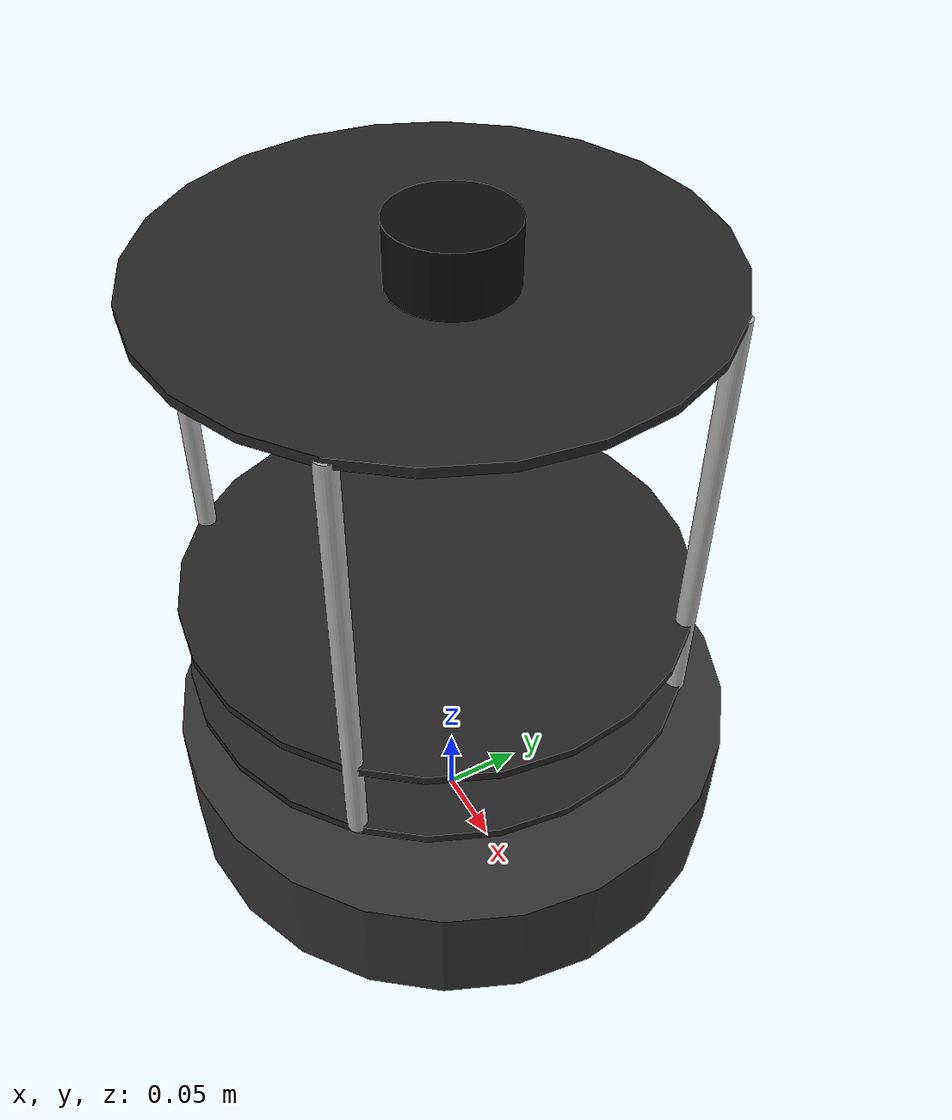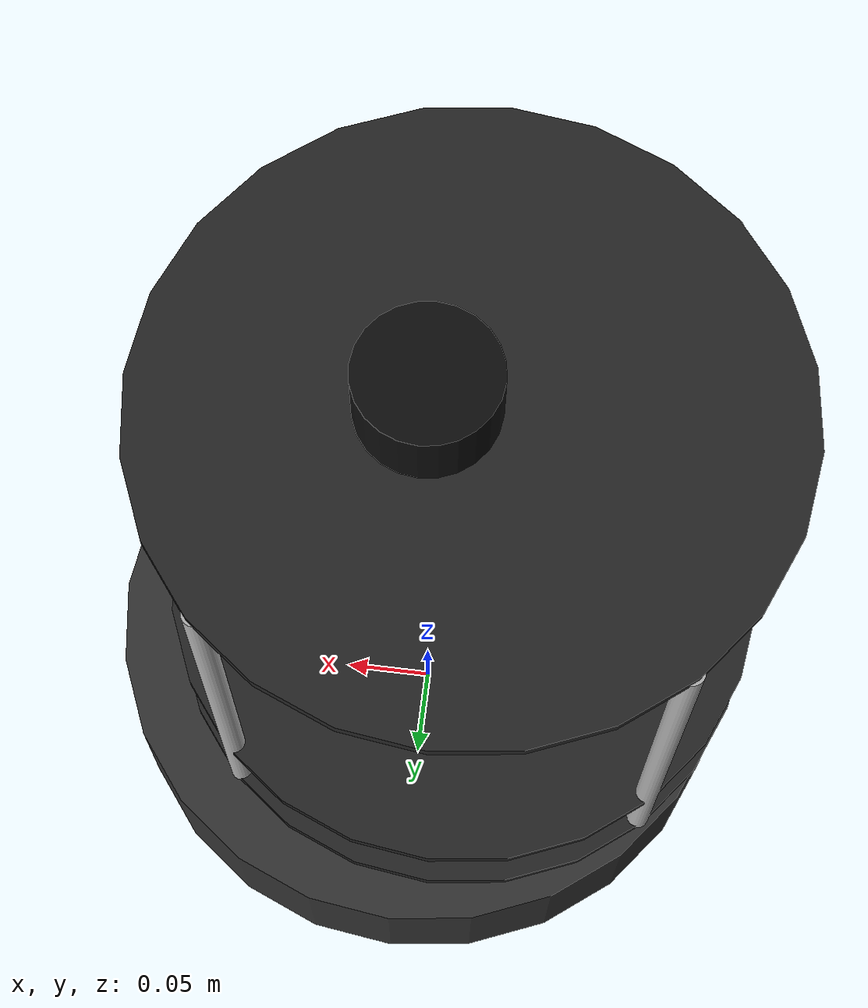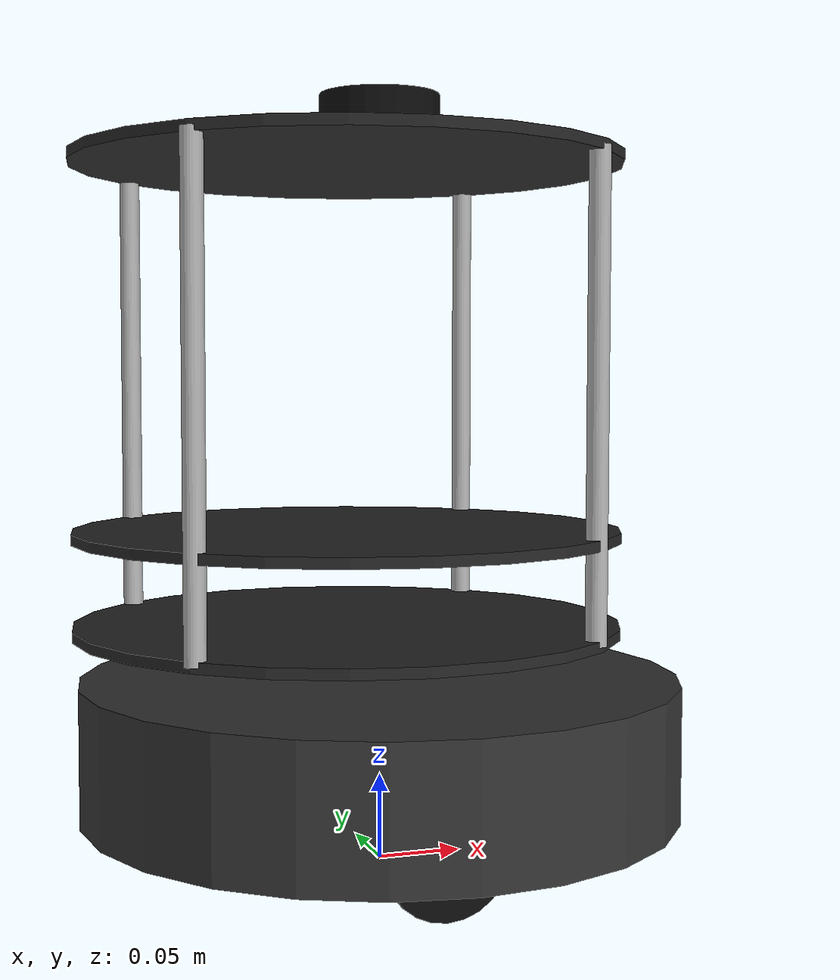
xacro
<?xml version="1.0"?>
<robot name="turtlebot2" xmlns:xacro="http://ros.org/wiki/xacro">

  <!-- sensor: lidar (360º encima del robot) o camera (como el robot real: /scan de
       la cámara de profundidad con depthimage_to_laserscan, 63º y mínimo 0.45 m) -->
  <xacro:arg name="sensor" default="lidar" />
  <!-- odom: world (odometría perfecta) o encoder (integra las ruedas: deriva como la real) -->
  <xacro:arg name="odom" default="world" />

  <xacro:property name="base_radius" value="0.177" />
  <xacro:property name="wheel_radius" value="0.035" />
  <xacro:property name="wheel_separation" value="0.230" />
  <xacro:property name="lidar_height" value="0.43" />

  <xacro:macro name="cylinder_inertia" params="m r h">
    <inertia ixx="${m * (3 * r * r + h * h) / 12}" ixy="0" ixz="0"
             iyy="${m * (3 * r * r + h * h) / 12}" iyz="0"
             izz="${m * r * r / 2}" />
  </xacro:macro>

  <!-- Base -->
  <link name="base_footprint" />

  <joint name="base_joint" type="fixed">
    <parent link="base_footprint" />
    <child link="base_link" />
    <origin xyz="0 0 0.0102" />
  </joint>

  <link name="base_link">
    <visual>
      <origin xyz="0 0 0.0595" />
      <geometry><cylinder radius="${base_radius}" length="0.0794" /></geometry>
      <material name="dark"><color rgba="0.2 0.2 0.2 1" /></material>
    </visual>
    <collision>
      <origin xyz="0 0 0.0595" />
      <geometry><cylinder radius="${base_radius}" length="0.0794" /></geometry>
    </collision>
    <!-- Bandejas: de 0.13 a 0.41 m (por debajo del plano del lidar) -->
    <collision>
      <origin xyz="-0.02 0 0.26" />
      <geometry><cylinder radius="0.16" length="0.28" /></geometry>
    </collision>
    <inertial>
      <origin xyz="0.01 0 0.0595" />
      <mass value="2.4" />
      <xacro:cylinder_inertia m="2.4" r="${base_radius}" h="0.0794" />
    </inertial>
  </link>

  <!-- Ruedas -->
  <xacro:macro name="wheel" params="side y">
    <joint name="wheel_${side}_joint" type="continuous">
      <parent link="base_link" />
      <child link="wheel_${side}_link" />
      <origin xyz="0 ${y} 0.025" rpy="${-pi / 2} 0 0" />
      <axis xyz="0 0 1" />
    </joint>
    <link name="wheel_${side}_link">
      <visual>
        <geometry><cylinder radius="${wheel_radius}" length="0.0206" /></geometry>
        <material name="black"><color rgba="0.05 0.05 0.05 1" /></material>
      </visual>
      <collision>
        <geometry><cylinder radius="${wheel_radius}" length="0.0206" /></geometry>
      </collision>
      <inertial>
        <mass value="0.1" />
        <xacro:cylinder_inertia m="0.1" r="${wheel_radius}" h="0.0206" />
      </inertial>
    </link>
    <gazebo reference="wheel_${side}_link">
      <mu1>1.0</mu1>
      <mu2>1.0</mu2>
      <kp>1000000.0</kp>
      <kd>100.0</kd>
      <minDepth>0.001</minDepth>
      <maxVel>1.0</maxVel>
    </gazebo>
  </xacro:macro>

  <xacro:wheel side="left" y="${wheel_separation / 2}" />
  <xacro:wheel side="right" y="${-wheel_separation / 2}" />

  <!-- Ruedas locas (sin rozamiento), 4 mm más altas para que el peso caiga en las ruedas motrices -->
  <xacro:macro name="caster" params="name x">
    <joint name="caster_${name}_joint" type="fixed">
      <parent link="base_link" />
      <child link="caster_${name}_link" />
      <origin xyz="${x} 0 0.011" />
    </joint>
    <link name="caster_${name}_link">
      <collision>
        <geometry><sphere radius="0.017" /></geometry>
      </collision>
      <inertial>
        <mass value="0.01" />
        <inertia ixx="0.001" ixy="0" ixz="0" iyy="0.001" iyz="0" izz="0.001" />
      </inertial>
    </link>
    <gazebo reference="caster_${name}_link">
      <mu1>0.0</mu1>
      <mu2>0.0</mu2>
    </gazebo>
  </xacro:macro>

  <xacro:caster name="front" x="0.115" />
  <xacro:caster name="back" x="-0.135" />

  <!-- Bandejas y postes (solo visual, el lidar está por encima) -->
  <xacro:macro name="plate" params="name z">
    <joint name="plate_${name}_joint" type="fixed">
      <parent link="base_link" />
      <child link="plate_${name}_link" />
      <origin xyz="-0.02 0 ${z}" />
    </joint>
    <link name="plate_${name}_link">
      <visual>
        <geometry><cylinder radius="0.16" length="0.006" /></geometry>
        <material name="plate"><color rgba="0.15 0.15 0.15 1" /></material>
      </visual>
    </link>
  </xacro:macro>

  <xacro:plate name="bottom" z="0.13" />
  <xacro:plate name="middle" z="0.185" />
  <xacro:plate name="top" z="0.40" />

  <xacro:macro name="pole" params="name x y">
    <joint name="pole_${name}_joint" type="fixed">
      <parent link="base_link" />
      <child link="pole_${name}_link" />
      <origin xyz="${x} ${y} 0.265" />
    </joint>
    <link name="pole_${name}_link">
      <visual>
        <geometry><cylinder radius="0.006" length="0.27" /></geometry>
        <material name="metal"><color rgba="0.7 0.7 0.7 1" /></material>
      </visual>
    </link>
  </xacro:macro>

  <xacro:pole name="1" x="0.09" y="0.11" />
  <xacro:pole name="2" x="0.09" y="-0.11" />
  <xacro:pole name="3" x="-0.13" y="0.11" />
  <xacro:pole name="4" x="-0.13" y="-0.11" />

  <xacro:if value="${'$(arg sensor)' == 'lidar'}">
  <!-- Lidar 360º -->
  <joint name="laser_joint" type="fixed">
    <parent link="base_footprint" />
    <child link="laser_link" />
    <origin xyz="0 0 ${lidar_height}" />
  </joint>

  <link name="laser_link">
    <visual>
      <geometry><cylinder radius="0.035" length="0.04" /></geometry>
      <material name="black" />
    </visual>
    <collision>
      <geometry><cylinder radius="0.035" length="0.04" /></geometry>
    </collision>
    <inertial>
      <mass value="0.1" />
      <inertia ixx="0.0001" ixy="0" ixz="0" iyy="0.0001" iyz="0" izz="0.0001" />
    </inertial>
  </link>

  <gazebo reference="laser_link">
    <sensor type="ray" name="lidar">
      <always_on>true</always_on>
      <update_rate>5.5</update_rate>
      <visualize>false</visualize>
      <ray>
        <scan>
          <horizontal>
            <samples>360</samples>
            <resolution>1</resolution>
            <min_angle>${-pi}</min_angle>
            <max_angle>${pi}</max_angle>
          </horizontal>
        </scan>
        <range>
          <min>0.15</min>
          <max>12.0</max>
          <resolution>0.01</resolution>
        </range>
        <noise>
          <type>gaussian</type>
          <mean>0.0</mean>
          <stddev>0.01</stddev>
        </noise>
      </ray>
      <plugin name="lidar_controller" filename="libgazebo_ros_laser.so">
        <topicName>scan</topicName>
        <frameName>laser_link</frameName>
      </plugin>
    </sensor>
  </gazebo>

  </xacro:if>

  <xacro:if value="${'$(arg sensor)' == 'camera'}">
  <!-- Cámara de profundidad: misma posición que camera_depth_frame en el robot real -->
  <joint name="camera_depth_joint" type="fixed">
    <parent link="base_footprint" />
    <child link="camera_depth_frame" />
    <origin xyz="-0.087 0.05 0.297" />
  </joint>

  <link name="camera_depth_frame">
    <visual>
      <origin xyz="0.02 0 0" />
      <geometry><box size="0.04 0.18 0.03" /></geometry>
      <material name="black" />
    </visual>
    <inertial>
      <mass value="0.1" />
      <inertia ixx="0.0001" ixy="0" ixz="0" iyy="0.0001" iyz="0" izz="0.0001" />
    </inertial>
  </link>

  <gazebo reference="camera_depth_frame">
    <sensor type="ray" name="depth_scan">
      <always_on>true</always_on>
      <update_rate>30</update_rate>
      <visualize>false</visualize>
      <ray>
        <scan>
          <horizontal>
            <samples>640</samples>
            <resolution>1</resolution>
            <min_angle>-0.5467</min_angle>
            <max_angle>0.5467</max_angle>
          </horizontal>
        </scan>
        <range>
          <min>0.45</min>
          <max>10.0</max>
          <resolution>0.005</resolution>
        </range>
        <noise>
          <type>gaussian</type>
          <mean>0.0</mean>
          <stddev>0.01</stddev>
        </noise>
      </ray>
      <plugin name="depth_scan_controller" filename="libgazebo_ros_laser.so">
        <topicName>scan</topicName>
        <frameName>camera_depth_frame</frameName>
      </plugin>
    </sensor>
  </gazebo>

  </xacro:if>

  <!-- Tracción diferencial con los topics del Kobuki -->
  <gazebo>
    <plugin name="kobuki_controller" filename="libgazebo_ros_diff_drive.so">
      <commandTopic>mobile_base/commands/velocity</commandTopic>
      <odometryTopic>odom</odometryTopic>
      <odometryFrame>odom</odometryFrame>
      <robotBaseFrame>base_footprint</robotBaseFrame>
      <odometrySource>$(arg odom)</odometrySource>
      <publishOdomTF>true</publishOdomTF>
      <publishWheelTF>false</publishWheelTF>
      <publishWheelJointState>true</publishWheelJointState>
      <leftJoint>wheel_left_joint</leftJoint>
      <rightJoint>wheel_right_joint</rightJoint>
      <wheelSeparation>${wheel_separation}</wheelSeparation>
      <wheelDiameter>${2 * wheel_radius}</wheelDiameter>
      <wheelTorque>5.0</wheelTorque>
      <wheelAcceleration>0</wheelAcceleration>
      <updateRate>50</updateRate>
      <legacyMode>false</legacyMode>
      <publishTf>1</publishTf>
      <rosDebugLevel>na</rosDebugLevel>
    </plugin>
  </gazebo>

</robot>
